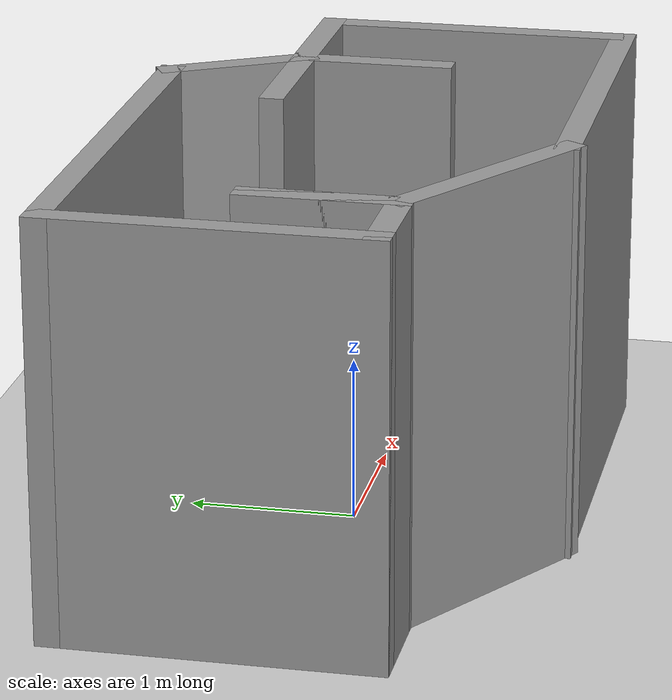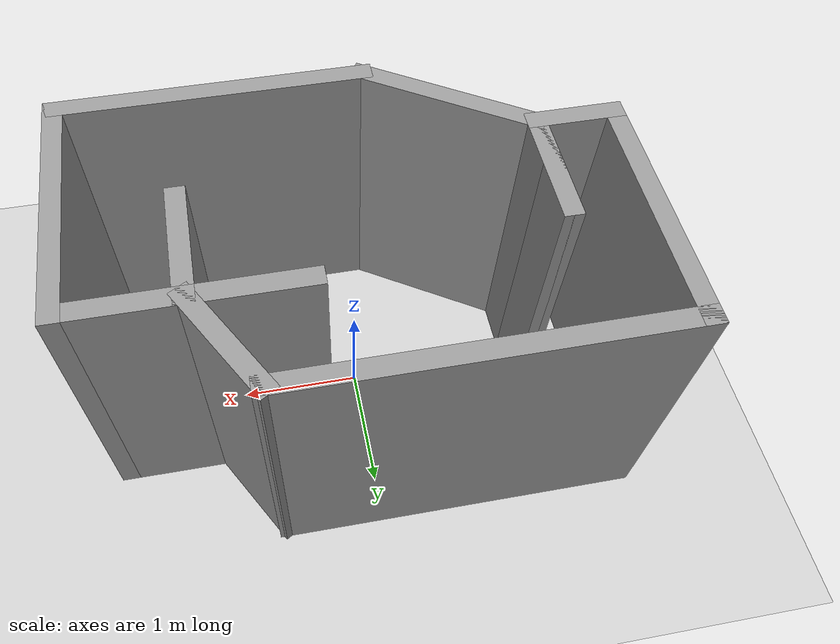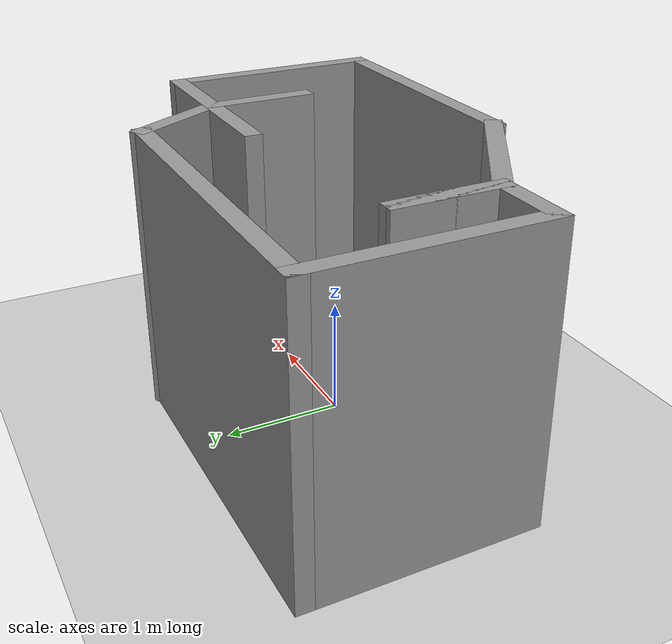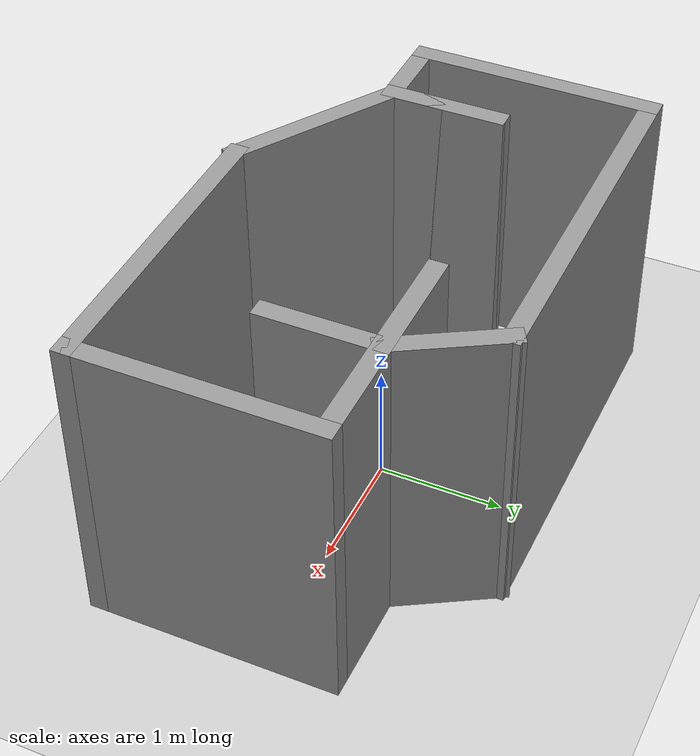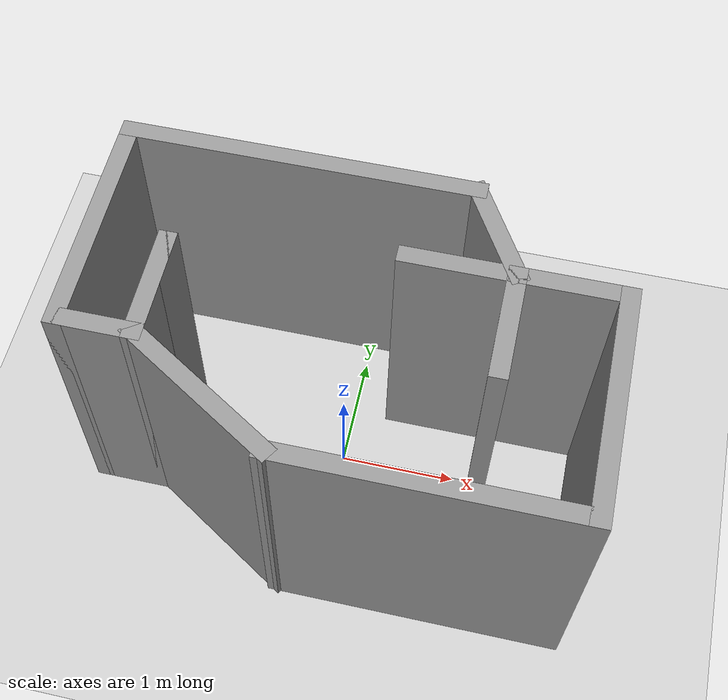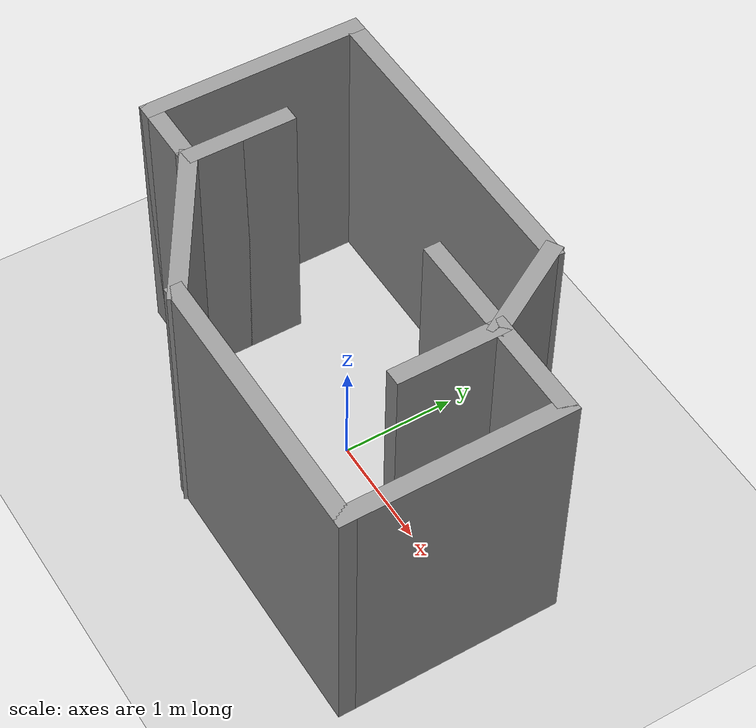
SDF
<sdf version='1.4'>
  <world name='default'>
    <!-- A global light source -->
    <include>
      <uri>model://sun</uri>
    </include>

    <!-- A ground plane -->
    <include>
      <uri>model://ground_plane</uri>
    </include>

    <physics type="ode">
      <real_time_update_rate>1000.0</real_time_update_rate>
      <max_step_size>0.001</max_step_size>
      <real_time_factor>1</real_time_factor>
      <ode>
        <solver>
          <type>quick</type>
          <iters>150</iters>
          <precon_iters>0</precon_iters>
          <sor>1.400000</sor>
          <use_dynamic_moi_rescaling>1</use_dynamic_moi_rescaling>
        </solver>
        <constraints>
          <cfm>0.00001</cfm>
          <erp>0.2</erp>
          <contact_max_correcting_vel>2000.000000</contact_max_correcting_vel>
          <contact_surface_layer>0.01000</contact_surface_layer>
        </constraints>
      </ode>
    </physics>

    <!-- Load world -->
    <include>
      <uri>model://turtlebot3_arena2</uri>
    </include>

    <scene>
      <ambient>0.4 0.4 0.4 1</ambient>
      <background>0.7 0.7 0.7 1</background>
      <shadows>true</shadows>
    </scene>

    <gui fullscreen='0'>
      <camera name='user_camera'>
        <pose>0.8 0.0 12.0 0 1.5708 0</pose>
        <view_controller>orbit</view_controller>
      </camera>
    </gui>
  </world>
</sdf>

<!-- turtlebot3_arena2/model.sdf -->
<sdf version='1.7'>
  <model name='arena2'>
    <pose>0 0 0 0 -0 0</pose>
    <link name='Wall_12'>
      <collision name='Wall_12_Collision'>
        <geometry>
          <box>
            <size>2 0.15 2.5</size>
          </box>
        </geometry>
        <pose>0 0 1.25 0 -0 0</pose>
      </collision>
      <visual name='Wall_12_Visual'>
        <pose>0 0 1.25 0 -0 0</pose>
        <geometry>
          <box>
            <size>2 0.15 2.5</size>
          </box>
        </geometry>
        <material>
          <script>
            <uri>file://media/materials/scripts/gazebo.material</uri>
            <name>Gazebo/Grey</name>
          </script>
          <ambient>1 1 1 1</ambient>
        </material>
        <meta>
          <layer>0</layer>
        </meta>
      </visual>
      <pose>2.0625 -0.367599 0 0 -0 -1.5708</pose>
    </link>
    <link name='Wall_30'>
      <collision name='Wall_30_Collision'>
        <geometry>
          <box>
            <size>1 0.15 2.5</size>
          </box>
        </geometry>
        <pose>0 0 1.25 0 -0 0</pose>
      </collision>
      <visual name='Wall_30_Visual'>
        <pose>0 0 1.25 0 -0 0</pose>
        <geometry>
          <box>
            <size>1 0.15 2.5</size>
          </box>
        </geometry>
        <material>
          <script>
            <uri>file://media/materials/scripts/gazebo.material</uri>
            <name>Gazebo/Grey</name>
          </script>
          <ambient>1 1 1 1</ambient>
        </material>
        <meta>
          <layer>0</layer>
        </meta>
      </visual>
      <pose>1.6375 0.557401 0 0 -0 3.14159</pose>
    </link>
    <link name='Wall_31'>
      <collision name='Wall_31_Collision'>
        <geometry>
          <box>
            <size>1 0.15 2.5</size>
          </box>
        </geometry>
        <pose>0 0 1.25 0 -0 0</pose>
      </collision>
      <visual name='Wall_31_Visual'>
        <pose>0 0 1.25 0 -0 0</pose>
        <geometry>
          <box>
            <size>1 0.15 2.5</size>
          </box>
        </geometry>
        <material>
          <script>
            <uri>file://media/materials/scripts/gazebo.material</uri>
            <name>Gazebo/Grey</name>
          </script>
          <ambient>1 1 1 1</ambient>
        </material>
        <meta>
          <layer>0</layer>
        </meta>
      </visual>
      <pose>1 0.925462 0 0 -0 2.0944</pose>
    </link>
    <link name='Wall_32'>
      <collision name='Wall_32_Collision'>
        <geometry>
          <box>
            <size>3 0.15 2.5</size>
          </box>
        </geometry>
        <pose>0 0 1.25 0 -0 0</pose>
      </collision>
      <visual name='Wall_32_Visual'>
        <pose>0 0 1.25 0 -0 0</pose>
        <geometry>
          <box>
            <size>3 0.15 2.5</size>
          </box>
        </geometry>
        <material>
          <script>
            <uri>file://media/materials/scripts/gazebo.material</uri>
            <name>Gazebo/Grey</name>
          </script>
          <ambient>1 1 1 1</ambient>
        </material>
        <meta>
          <layer>0</layer>
        </meta>
      </visual>
      <pose>-0.6375 1.29352 0 0 -0 3.14159</pose>
    </link>
    <link name='Wall_33'>
      <collision name='Wall_33_Collision'>
        <geometry>
          <box>
            <size>2 0.15 2.5</size>
          </box>
        </geometry>
        <pose>0 0 1.25 0 -0 0</pose>
      </collision>
      <visual name='Wall_33_Visual'>
        <pose>0 0 1.25 0 -0 0</pose>
        <geometry>
          <box>
            <size>2 0.15 2.5</size>
          </box>
        </geometry>
        <material>
          <script>
            <uri>file://media/materials/scripts/gazebo.material</uri>
            <name>Gazebo/Grey</name>
          </script>
          <ambient>1 1 1 1</ambient>
        </material>
        <meta>
          <layer>0</layer>
        </meta>
      </visual>
      <pose>-2.0625 0.368522 0 0 -0 -1.5708</pose>
    </link>
    <link name='Wall_34'>
      <collision name='Wall_34_Collision'>
        <geometry>
          <box>
            <size>0.75 0.15 2.5</size>
          </box>
        </geometry>
        <pose>0 0 1.25 0 -0 0</pose>
      </collision>
      <visual name='Wall_34_Visual'>
        <pose>0 0 1.25 0 -0 0</pose>
        <geometry>
          <box>
            <size>0.75 0.15 2.5</size>
          </box>
        </geometry>
        <material>
          <script>
            <uri>file://media/materials/scripts/gazebo.material</uri>
            <name>Gazebo/Grey</name>
          </script>
          <ambient>1 1 1 1</ambient>
        </material>
        <meta>
          <layer>0</layer>
        </meta>
      </visual>
      <pose>-1.7625 -0.556478 0 0 -0 0</pose>
    </link>
    <link name='Wall_35'>
      <collision name='Wall_35_Collision'>
        <geometry>
          <box>
            <size>1 0.15 2.5</size>
          </box>
        </geometry>
        <pose>0 0 1.25 0 -0 0</pose>
      </collision>
      <visual name='Wall_35_Visual'>
        <pose>0 0 1.25 0 -0 0</pose>
        <geometry>
          <box>
            <size>1 0.15 2.5</size>
          </box>
        </geometry>
        <material>
          <script>
            <uri>file://media/materials/scripts/gazebo.material</uri>
            <name>Gazebo/Grey</name>
          </script>
          <ambient>1 1 1 1</ambient>
        </material>
        <meta>
          <layer>0</layer>
        </meta>
      </visual>
      <pose>-1.4625 -0.131478 0 0 -0 1.5708</pose>
    </link>
    <link name='Wall_36'>
      <collision name='Wall_36_Collision'>
        <geometry>
          <box>
            <size>1 0.15 2.5</size>
          </box>
        </geometry>
        <pose>0 0 1.25 0 -0 0</pose>
      </collision>
      <visual name='Wall_36_Visual'>
        <pose>0 0 1.25 0 -0 0</pose>
        <geometry>
          <box>
            <size>1 0.15 2.5</size>
          </box>
        </geometry>
        <material>
          <script>
            <uri>file://media/materials/scripts/gazebo.material</uri>
            <name>Gazebo/Grey</name>
          </script>
          <ambient>1 1 1 1</ambient>
        </material>
        <meta>
          <layer>0</layer>
        </meta>
      </visual>
      <pose>-1.4625 -0.131478 0 0 -0 -1.5708</pose>
    </link>
    <link name='Wall_37'>
      <collision name='Wall_37_Collision'>
        <geometry>
          <box>
            <size>1.53654 0.15 2.5</size>
          </box>
        </geometry>
        <pose>0 0 1.25 0 -0 0</pose>
      </collision>
      <visual name='Wall_37_Visual'>
        <pose>0 0 1.25 0 -0 0</pose>
        <geometry>
          <box>
            <size>1.53654 0.15 2.5</size>
          </box>
        </geometry>
        <material>
          <script>
            <uri>file://media/materials/scripts/gazebo.material</uri>
            <name>Gazebo/Grey</name>
          </script>
          <ambient>1 1 1 1</ambient>
        </material>
        <meta>
          <layer>0</layer>
        </meta>
      </visual>
      <pose>-0.875 -0.924538 0 0 -0 -0.559668</pose>
    </link>
    <link name='Wall_38'>
      <collision name='Wall_38_Collision'>
        <geometry>
          <box>
            <size>2.5 0.15 2.5</size>
          </box>
        </geometry>
        <pose>0 0 1.25 0 -0 0</pose>
      </collision>
      <visual name='Wall_38_Visual'>
        <pose>0 0 1.25 0 -0 0</pose>
        <geometry>
          <box>
            <size>2.5 0.15 2.5</size>
          </box>
        </geometry>
        <material>
          <script>
            <uri>file://media/materials/scripts/gazebo.material</uri>
            <name>Gazebo/Grey</name>
          </script>
          <ambient>1 1 1 1</ambient>
        </material>
        <meta>
          <layer>0</layer>
        </meta>
      </visual>
      <pose>0.8875 -1.2926 0 0 -0 0</pose>
    </link>
    <link name='Wall_41'>
      <collision name='Wall_41_Collision'>
        <geometry>
          <box>
            <size>1 0.15 2.5</size>
          </box>
        </geometry>
        <pose>0 0 1.25 0 -0 0</pose>
      </collision>
      <visual name='Wall_41_Visual'>
        <pose>0 0 1.25 0 -0 0</pose>
        <geometry>
          <box>
            <size>1 0.15 2.5</size>
          </box>
        </geometry>
        <material>
          <script>
            <uri>file://media/materials/scripts/gazebo.material</uri>
            <name>Gazebo/Grey</name>
          </script>
          <ambient>1 1 1 1</ambient>
        </material>
        <meta>
          <layer>0</layer>
        </meta>
      </visual>
      <pose>0.7875 0.557401 0 0 -0 3.14159</pose>
    </link>
    <link name='Wall_44'>
      <collision name='Wall_44_Collision'>
        <geometry>
          <box>
            <size>1 0.15 2.5</size>
          </box>
        </geometry>
        <pose>0 0 1.25 0 -0 0</pose>
      </collision>
      <visual name='Wall_44_Visual'>
        <pose>0 0 1.25 0 -0 0</pose>
        <geometry>
          <box>
            <size>1 0.15 2.5</size>
          </box>
        </geometry>
        <material>
          <script>
            <uri>file://media/materials/scripts/gazebo.material</uri>
            <name>Gazebo/Grey</name>
          </script>
          <ambient>1 1 1 1</ambient>
        </material>
        <meta>
          <layer>0</layer>
        </meta>
      </visual>
      <pose>1.2125 0.132401 0 0 -0 -1.5708</pose>
    </link>
    <static>1</static>
  </model>
</sdf>
